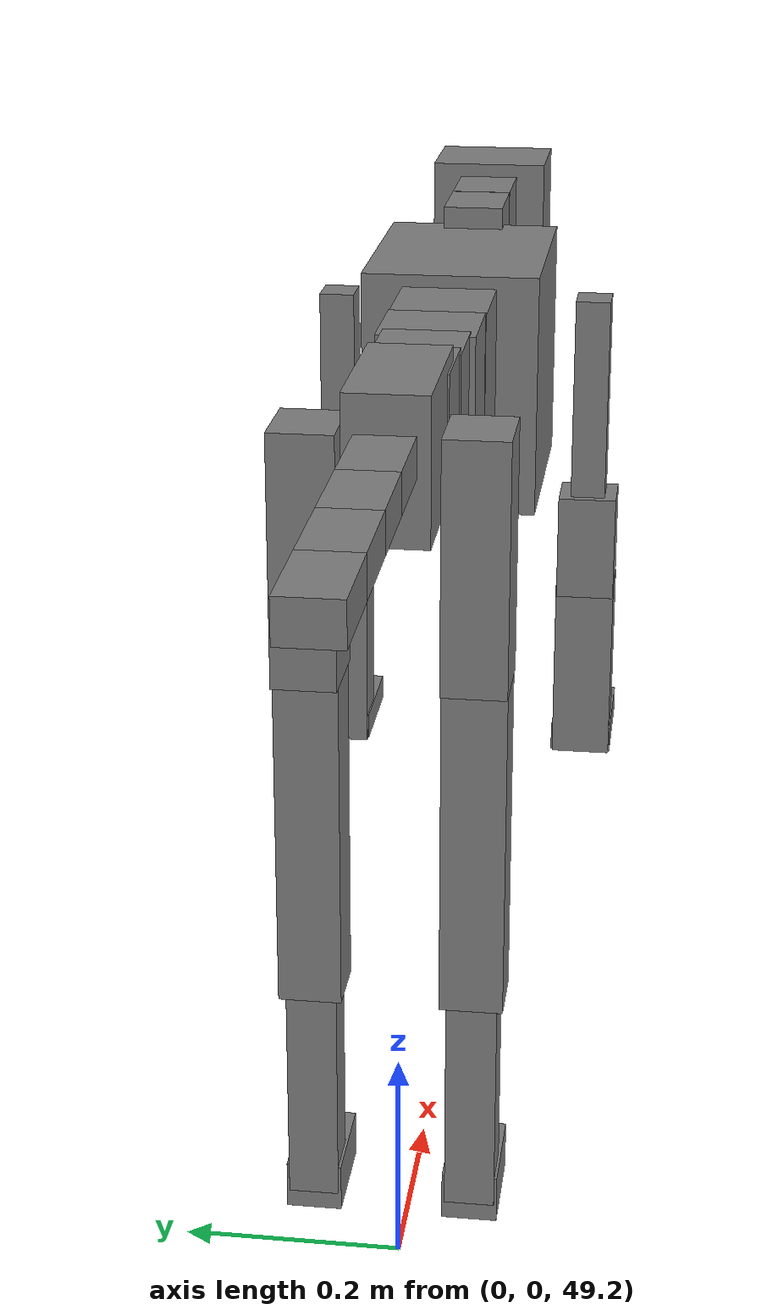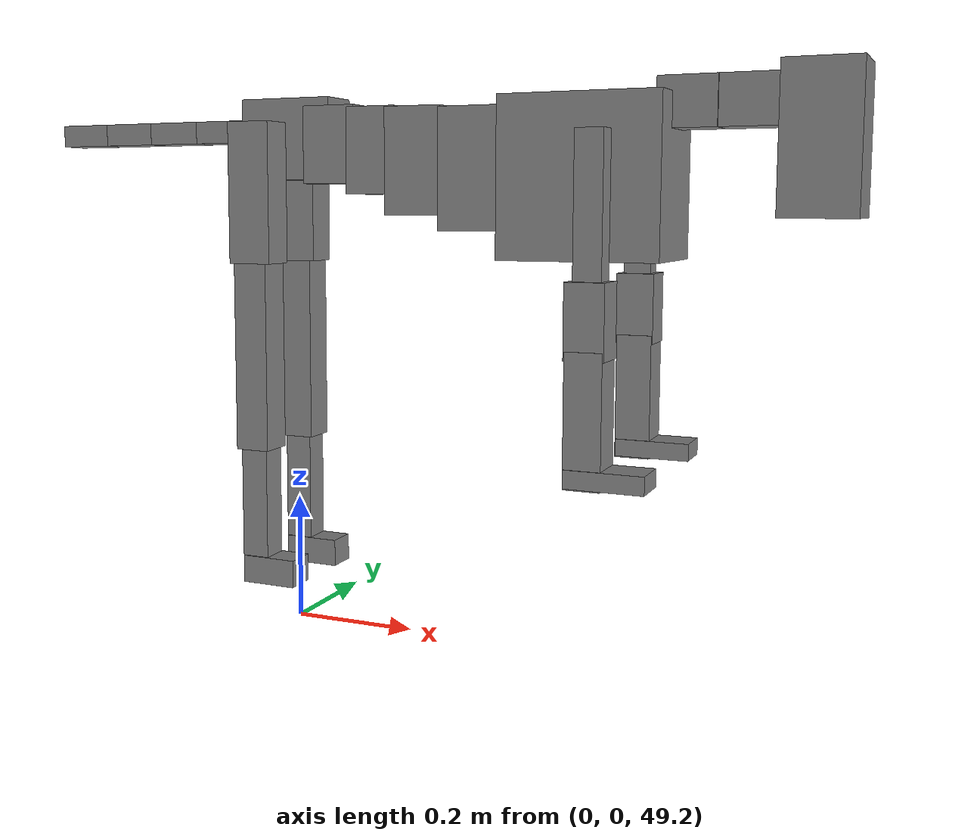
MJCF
<mujoco model="dog">

    <default>
        <joint armature="0.02" stiffness="1" damping="0.2" limited="true"/>
        <geom condim="3" friction="1 0.05 0.05" margin="0.01"/>
        <motor ctrllimited="true" ctrlrange="-1.0 1.0" forcelimited="true" gear="50"/>
    </default>

    <compiler inertiafromgeom="true" angle="radian"/>

    <option timestep="0.016" iterations="50" tolerance="1e-10" solver="Newton" jacobian="dense" cone="pyramidal"/>

    <size nconmax="20000" njmax="60000" nstack="5000000"/>
    <visual>
        <map force="0.1" zfar="30"/>
        <rgba haze="0.15 0.25 0.35 1"/>
        <quality shadowsize="2048"/>
        <global offwidth="800" offheight="800"/>
    </visual>

    <asset>
        <texture type="skybox" builtin="gradient" rgb1="0.3 0.5 0.7" rgb2="0 0 0" width="512" height="512"/>
        <texture name="texplane" type="2d" builtin="checker" rgb1=".2 .3 .4" rgb2=".1 0.15 0.2" width="512" height="512"
                 mark="cross" markrgb=".8 .8 .8"/>
        <texture name="texgeom" type="cube" builtin="flat" mark="cross" width="127" height="1278" rgb1="0.8 0.6 0.4"
                 rgb2="0.8 0.6 0.4" markrgb="1 1 1" random="0.01"/>

        <material name="matplane" reflectance="0.3" texture="texplane" texrepeat="1 1" texuniform="true"/>
        <material name="matgeom" texture="texgeom" texuniform="true" rgba="0.8 0.6 .4 1"/>
    </asset>

    <worldbody>
        <geom name="floor" pos="0 0 0" size="0 0 .25" type="plane" material="matplane" condim="3"/>

        <light directional="false" diffuse=".2 .2 .2" specular="0 0 0" pos="0 0 5" dir="0 0 -1" castshadow="false"/>
        <light mode="targetbodycom" target="torso" directional="false" diffuse=".8 .8 .8" specular="0.3 0.3 0.3"
               pos="0 0 4.0" dir="0 0 -1"/>

        <body name="root" pos="0 0 50">
            <freejoint name="root_1"/>
            <geom type="box" pos="0 0 -0.02" size="0.0774  0.0358  0.063" density="2030"/>

            <body name="spine1" pos="0.054 0 0">
                <joint name="spine1_y" axis="0 1 0" range="0 0.7" limited="true"/>
                <geom type="box" pos="0.02375 0 -0.03" size="0.04375  0.0375  0.05985" density="2030"/>

                <body name="spine2" pos="0.0612 0 0">
                    <joint name="spine2_y" axis="0 1 0" range="-0.15 0.15" limited="true"/>
                    <geom type="box" pos="0.03555  0  -0.04" size="0.04055  0.039  0.06615" density="2030"/>

                    <body name="spine3" pos="0.0730 0 0">
                        <joint name="spine3_y" axis="0 1 0" range="-0.15 0.15" limited="true"/>
                        <geom type="box" pos="0.03555  0  -0.057" size="0.04555  0.0445  0.081" density="2030"/>

                        <body name="spine4" pos="0.0780 0 0">
                            <joint name="spine4_y" axis="0 1 0" range="-0.15 0.15" limited="true"/>
                            <geom type="box" pos="0.05265  0  -0.07" size="0.05265  0.045  0.09135" density="2030"/>

                            <body name="torso" pos="0.1082 0 0">
                                <joint name="torso_y" axis="0 1 0" range="-0.15 0.15" limited="true"/>
                                <geom type="box" pos="0.11925  0  -0.085" size="0.11925  0.085  0.11745"
                                      density="2030"/>

                                <body name="neck1" pos="0.2160  0   0.0180">
                                    <joint name="neck1_y" axis="0 1 0" range="-1.2  -1" limited="true"/>
                                    <geom type="box" pos="0.0423  0  0" size="0.0423  0.03  0.036" density="2325"/>

                                    <body name="neck2" pos="0.0853  0  0">
                                        <joint name="neck2_y" axis="0 1 0" range="0.1  0" limited="true"/>
                                        <geom type="box" pos="0.0423  0  0" size="0.0423  0.03  0.036" density="2325"/>

                                        <body name="head" pos="0.0853  0  0">
                                            <joint name="head_y" axis="0 1 0" range="-0.3  -0.2" limited="true"/>
                                            <geom type="box" pos="0.0531  0  -0.055" size="0.0531  0.06  0.1044"
                                                  density="4030"/>

                                        </body>
                                    </body>
                                </body>

                                <body name="front_shoulder" pos="0.156  0   -0.0480">
                                    <joint name="front_shoulder_y" axis="0 1 0" range="-1 1.5" limited="true"/>
                                    <geom type="box" pos="0 0.13 -0.0893" size="0.0204  0.0174  0.1159" density="1158"/>
                                    <geom type="box" pos="0 -0.13 -0.0893" size="0.0204  0.0174  0.1159"
                                          density="1158"/>

                                    <body name="front_elbow" pos="0  0  -0.1785">
                                        <joint name="front_elbow_y" axis="0 1 0" range="-2 0" limited="true"/>
                                        <geom type="box" pos="0 0.13 -0.0535" size="0.0286  0.0293  0.0535"
                                              density="1081"/>
                                        <geom type="box" pos="0 -0.13 -0.0535" size="0.0286  0.0293  0.0535"
                                              density="1081"/>

                                        <body name="front_wrist" pos="0  0  -0.1070">
                                            <joint name="front_wrist_y" axis="0 1 0" range="-0.2 0" limited="true"/>
                                            <geom type="box" pos="0 0.13 -0.0819" size="0.0269  0.0298  0.0950"
                                                  density="1664"/>
                                            <geom type="box" pos="0 -0.13 -0.0819" size="0.0269  0.0298  0.0950"
                                                  density="1664"/>

                                            <body name="front_finger_end" pos="0  0  -0.1638">
                                                <joint name="front_finger_y" axis="0 1 0" range="-0.4 1"
                                                       limited="true"/>
                                                <geom type="box" pos="0.0311  0.13  0.0018"
                                                      size="0.0570  0.0311  0.0132" density="1515"/>
                                                <geom type="box" pos="0.0311  -0.13  0.0018"
                                                      size="0.0570  0.0311  0.0132" density="1515"/>

                                            </body>

                                        </body>
                                    </body>
                                </body>

                            </body>
                        </body>
                    </body>
                </body>
            </body>

            <body name="back_hip" pos="-0.03 0 -0.018">
                <joint name="back_hip_y" axis="0 1 0" range="-1.5 0.3" limited="true"/>
                <geom type="box" pos="0 0.07 -0.0865" size="0.0355  0.0278  0.1093" density="1154"/>
                <geom type="box" pos="0 -0.07 -0.0865" size="0.0355  0.0278  0.1093" density="1154"/>

                <body name="back_knee" pos="0  0  -0.1730">
                    <joint name="back_knee_y" axis="0 1 0" range="0 2.8" limited="true"/>
                    <geom type="box" pos="0 0.07 -0.1509" size="0.0279  0.0275  0.1664" density="1227"/>
                    <geom type="box" pos="0 -0.07 -0.1509" size="0.0279  0.0275  0.1664" density="1227"/>

                    <body name="back_ankle" pos="0  0  -0.3018">
                        <joint name="back_ankle_y" axis="0 1 0" range="-2.2 0" limited="true"/>
                        <geom type="box" pos="0 0.07 -0.1019" size="0.0221  0.0221  0.1131" density="1284"/>
                        <geom type="box" pos="0 -0.07 -0.1019" size="0.0221  0.0221  0.1131" density="1284"/>

                        <body name="back_toe_end" pos="0  0  -0.2037">
                            <joint name="back_toe_y" axis="0 1 0" range="-0.4 1" limited="true"/>
                            <geom type="box" pos="0.0245  0.07  -0.0067" size="0.0449  0.0245  0.0217" density="1515"/>
                            <geom type="box" pos="0.0245  -0.07  -0.0067" size="0.0449  0.0245  0.0217" density="1515"/>

                        </body>
                    </body>
                </body>
            </body>

            <body name="tail1" pos="-0.074 0 -0.006">
                <joint name="tail1_y" axis="0 1 0" range="-0.2 0.2" limited="true"/>
                <geom type="box" pos="-0.0536  0  0" size="0.045  0.025  0.0175" density="1587"/>

                <body name="tail2" pos="-0.09 0 0">
                    <joint name="tail2_y" axis="0 1 0" range="-0.2 0.2" limited="true"/>
                    <geom type="box" pos="-0.0536  0  0" size="0.045  0.025  0.0175" density="1587"/>

                    <body name="tail3" pos="-0.09 0 0">
                        <joint name="tail3_y" axis="0 1 0" range="-0.2 0.2" limited="true"/>
                        <geom type="box" pos="-0.0536  0  0" size="0.045  0.025  0.0175" density="1587"/>

                        <body name="tail4" pos="-0.09 0 0">
                            <joint name="tail4_y" axis="0 1 0" range="-0.2 0.2" limited="true"/>
                            <geom type="box" pos="-0.0536  0  0" size="0.045  0.025  0.0175" density="1587"/>

                        </body>
                    </body>
                </body>
            </body>
        </body>
    </worldbody>

    <actuator>
        <motor joint="spine1_y" forcerange="-150 150     "/>
        <motor joint="spine2_y" forcerange="-150 150     "/>
        <motor joint="spine3_y" forcerange="-150 150     "/>
        <motor joint="spine4_y" forcerange="-150 150     "/>
        <motor joint="torso_y" forcerange="-150 150     "/>
        <motor joint="neck1_y" forcerange="-100 100       "/>
        <motor joint="neck2_y" forcerange="-100 100       "/>
        <motor joint="head_y" forcerange="-150 150       "/>
        <motor joint="front_shoulder_y" forcerange="-110.10 106.20"/>
        <motor joint="front_elbow_y" forcerange="-117.15 195.85"/>
        <motor joint="front_wrist_y" forcerange="-118.67 120.10"/>
        <motor joint="front_finger_y" forcerange="-72.52 53.21"/>
        <motor joint="back_hip_y" forcerange="-256.60 314.68"/>
        <motor joint="back_knee_y" forcerange="-218.11 381.22"/>
        <motor joint="back_angle_y" forcerange="-192.47 61.13"/>
        <motor joint="back_toe_y" forcerange="-47.95 68.06"/>
        <motor joint="tail1_y" forcerange="-50 50     "/>
        <motor joint="tail2_y" forcerange="-50 50     "/>
        <motor joint="tail3_y" forcerange="-50 50     "/>
        <motor joint="tail4_y" forcerange="-50 50     "/>
    </actuator>
</mujoco>
